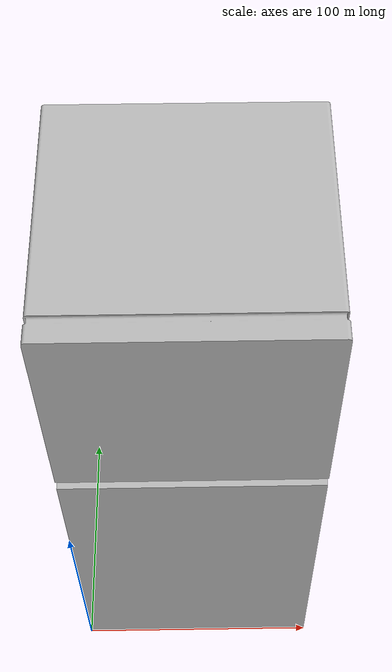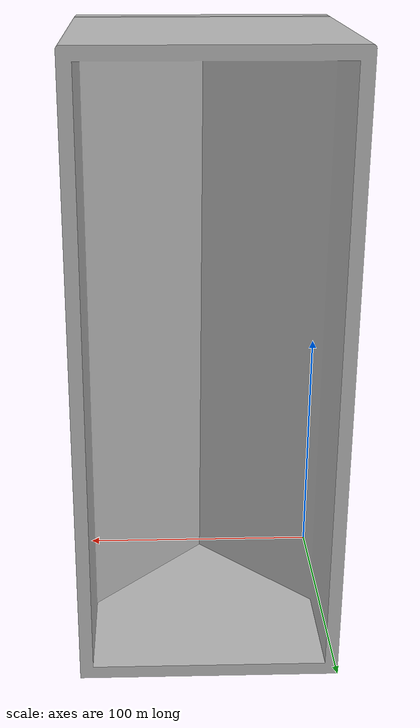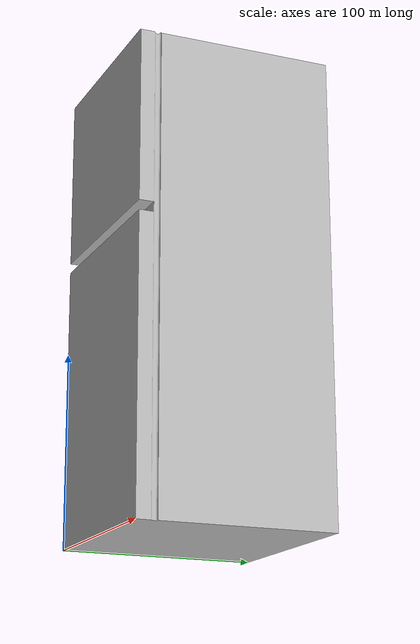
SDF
<?xml version="1.0" ?>
<sdf version="1.5">
  <model name="fridge">
    <static>false</static>
    <link name="link">
      <collision name="collision">
        <geometry>
          <box>
            <size>3 2 5</size>
          </box>
        </geometry>
      </collision>
      <visual name="visual">
        <geometry>
          <mesh>
            <uri>model:/home/joao/final-version/sdf-transformer/models-stl/Barbie_Fridge_Freezer_v3.stl</uri>
          </mesh>
        </geometry>
      </visual>
    </link>
  </model>
</sdf>
